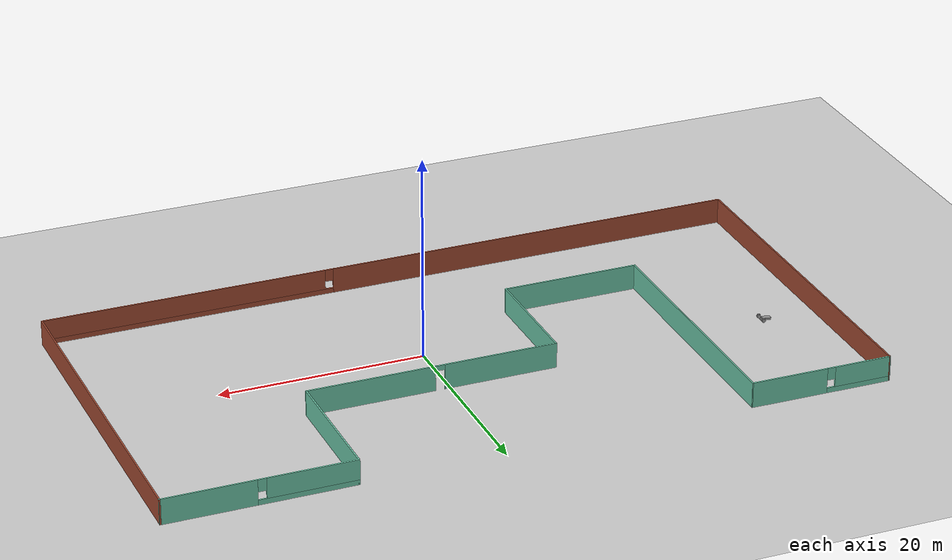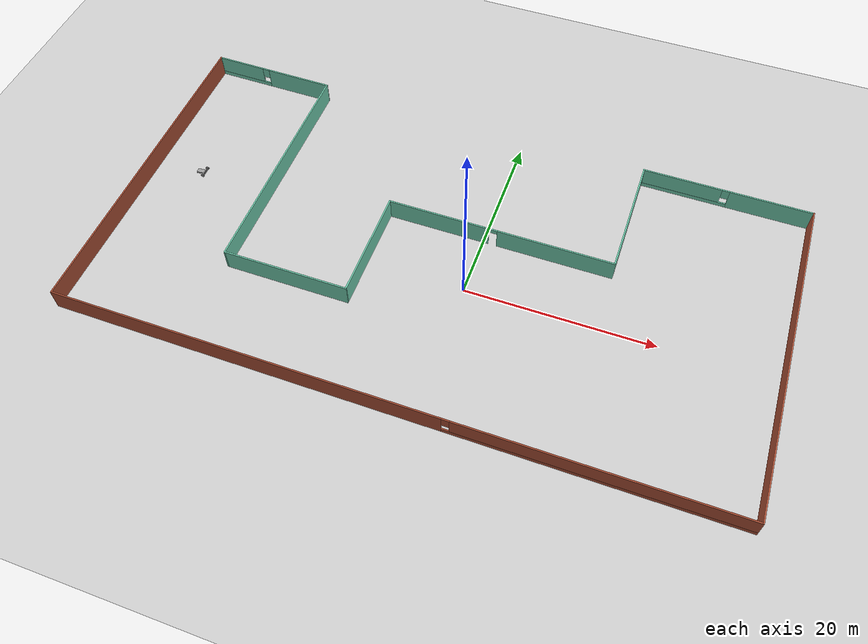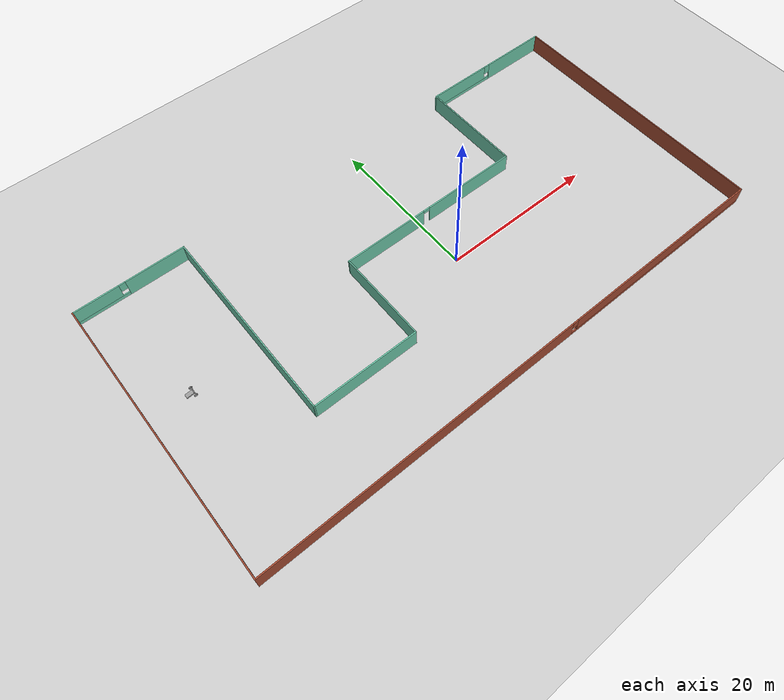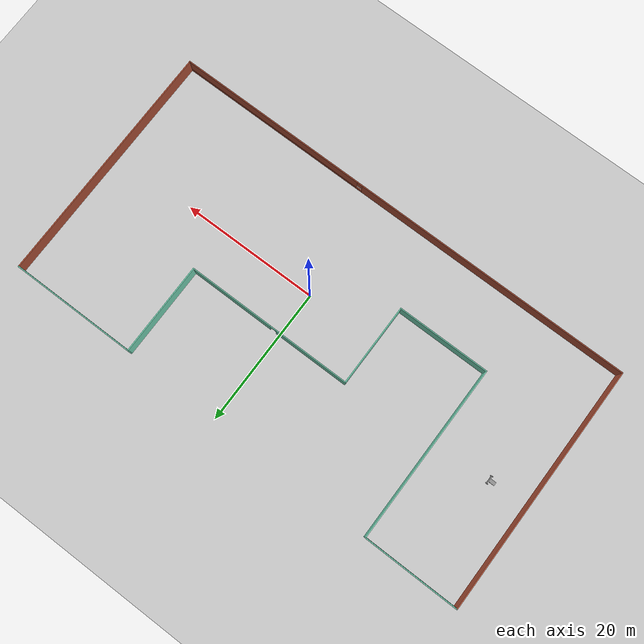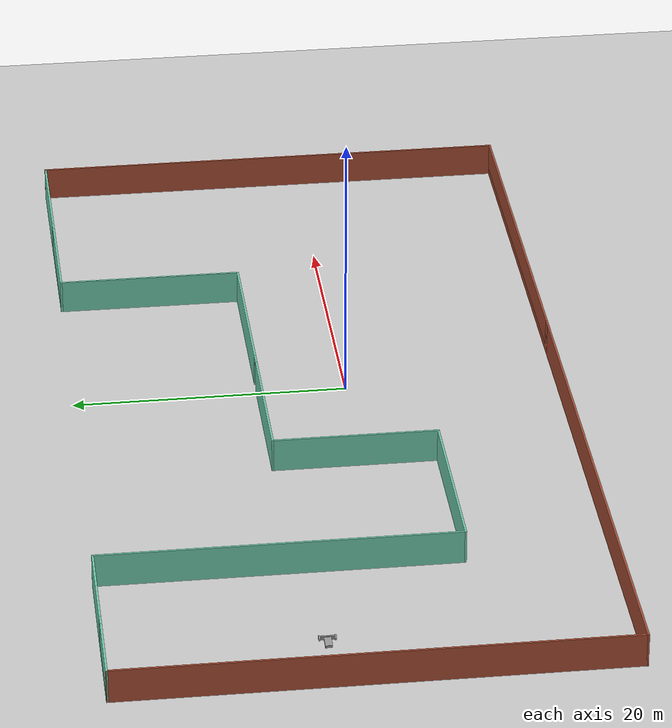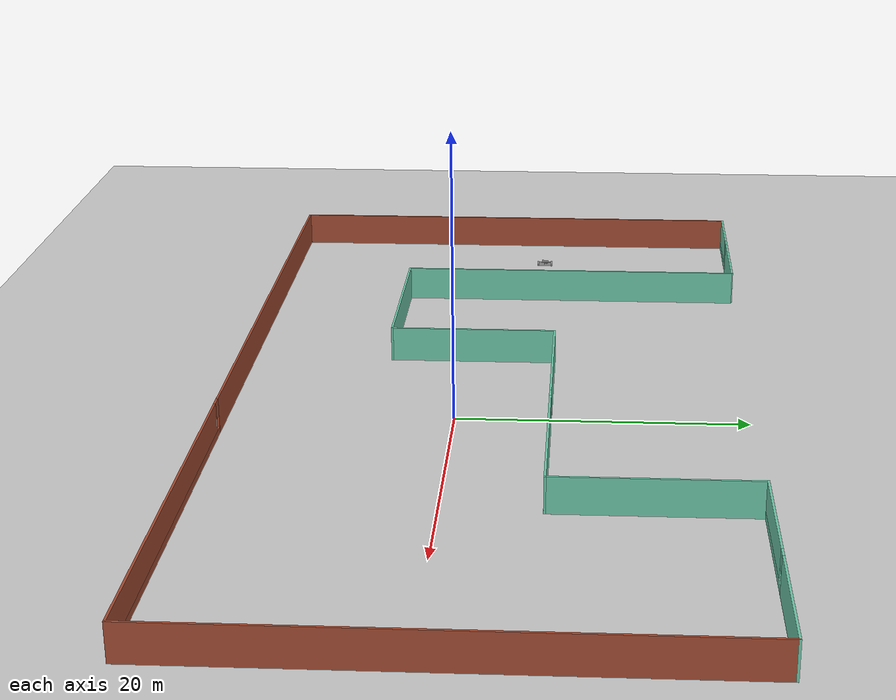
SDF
<sdf version="1.6">
 <world name="default">
  <model name="ground_plane">
   <static>1</static>
   <link name="link">
    <collision name="collision">
     <geometry><plane><normal>0 0 1</normal><size>100 100</size></plane></geometry>
     <surface>
      <contact><collide_bitmask>65535</collide_bitmask></contact>
      <friction><ode><mu>100</mu><mu2>50</mu2></ode></friction>
     </surface>
    </collision>
    <visual name="visual">
     <cast_shadows>0</cast_shadows>
     <geometry><plane><normal>0 0 1</normal><size>100 100</size></plane></geometry>
     <material>
      <script><uri>file://media/materials/scripts/gazebo.material</uri><name>Gazebo/Grey</name></script>
     </material>
    </visual>
   </link>
  </model>
  <model name="building_model">
   <pose>-2.8685 2.44532 0 0 -0 0</pose>
   <link name="Wall_0">
    <collision name="Wall_0_Collision">
     <geometry><box><size>36 0.15 2.5</size></box></geometry>
     <pose>0 0 1.25 0 -0 0</pose>
    </collision>
    <visual name="Wall_0_Visual">
     <pose>0 0 1.25 0 -0 0</pose>
     <geometry><box><size>36 0.15 2.5</size></box></geometry>
     <material>
      <script><uri>file://media/materials/scripts/gazebo.material</uri><name>Gazebo/Bricks</name></script>
      <ambient>0.435294 0.796078 0.67451 1</ambient>
     </material>
     <meta><layer>0</layer></meta>
    </visual>
    <pose>-34.7997 -0.00027 0 0 0 -1.5708</pose>
   </link>
   <link name="Wall_1">
    <pose>0.000272 -17.9253 0 0 -0 0</pose>
    <visual name="Wall_1_Visual_0">
     <pose>-14.4324 0 1.25 0 -0 0</pose>
     <geometry><box><size>40.8853 0.15 2.5</size></box></geometry>
     <material>
      <script><uri>file://media/materials/scripts/gazebo.material</uri><name>Gazebo/Bricks</name></script>
      <ambient>0.435294 0.796078 0.67451 1</ambient>
     </material>
     <meta><layer>0</layer></meta>
    </visual>
    <collision name="Wall_1_Collision_0">
     <geometry><box><size>40.8853 0.15 2.5</size></box></geometry>
     <pose>-14.4324 0 1.25 0 -0 0</pose>
    </collision>
    <visual name="Wall_1_Visual_1">
     <pose>20.4426 0 0.25 0 -0 0</pose>
     <geometry><box><size>28.8647 0.15 0.5</size></box></geometry>
     <material>
      <script><uri>file://media/materials/scripts/gazebo.material</uri><name>Gazebo/Bricks</name></script>
      <ambient>0.435294 0.796078 0.67451 1</ambient>
     </material>
     <meta><layer>0</layer></meta>
    </visual>
    <collision name="Wall_1_Collision_1">
     <geometry><box><size>28.8647 0.15 0.5</size></box></geometry>
     <pose>20.4426 0 0.25 0 -0 0</pose>
    </collision>
    <visual name="Wall_1_Visual_2">
     <pose>20.8426 0 1.5 0 -0 0</pose>
     <geometry><box><size>28.0647 0.15 2</size></box></geometry>
     <material>
      <script><uri>file://media/materials/scripts/gazebo.material</uri><name>Gazebo/Bricks</name></script>
      <ambient>0.435294 0.796078 0.67451 1</ambient>
     </material>
     <meta><layer>0</layer></meta>
    </visual>
    <collision name="Wall_1_Collision_2">
     <geometry><box><size>28.0647 0.15 2</size></box></geometry>
     <pose>20.8426 0 1.5 0 -0 0</pose>
    </collision>
    <visual name="Wall_1_Visual_3">
     <pose>6.41026 0 1.9 0 -0 0</pose>
     <geometry><box><size>0.8 0.15 1.2</size></box></geometry>
     <material>
      <script><uri>file://media/materials/scripts/gazebo.material</uri><name>Gazebo/Bricks</name></script>
      <ambient>0.435294 0.796078 0.67451 1</ambient>
     </material>
     <meta><layer>0</layer></meta>
    </visual>
    <collision name="Wall_1_Collision_3">
     <geometry><box><size>0.8 0.15 1.2</size></box></geometry>
     <pose>6.41026 0 1.9 0 -0 0</pose>
    </collision>
   </link>
   <link name="Wall_2">
    <collision name="Wall_2_Collision">
     <geometry><box><size>35.5 0.15 2.5</size></box></geometry>
     <pose>0 0 1.25 0 -0 0</pose>
    </collision>
    <visual name="Wall_2_Visual">
     <pose>0 0 1.25 0 -0 0</pose>
     <geometry><box><size>35.5 0.15 2.5</size></box></geometry>
     <material>
      <script><uri>file://media/materials/scripts/gazebo.material</uri><name>Gazebo/Bricks</name></script>
      <ambient>0.435294 0.796078 0.67451 1</ambient>
     </material>
     <meta><layer>0</layer></meta>
    </visual>
    <pose>34.8003 -0.25027 0 0 -0 1.5708</pose>
   </link>
   <link name="Wall_3">
    <pose>25.7503 17.4247 0 0 -0 3.14159</pose>
    <visual name="Wall_3_Visual_0">
     <pose>-4.68361 0 1.25 0 -0 0</pose>
     <geometry><box><size>8.88279 0.15 2.5</size></box></geometry>
     <material>
      <script><uri>file://media/materials/scripts/gazebo.material</uri><name>Gazebo/Grey</name></script>
      <ambient>0.435294 0.796078 0.67451 1</ambient>
     </material>
     <meta><layer>0</layer></meta>
    </visual>
    <collision name="Wall_3_Collision_0">
     <geometry><box><size>8.88279 0.15 2.5</size></box></geometry>
     <pose>-4.68361 0 1.25 0 -0 0</pose>
    </collision>
    <visual name="Wall_3_Visual_1">
     <pose>4.44139 0 0.25 0 -0 0</pose>
     <geometry><box><size>9.36721 0.15 0.5</size></box></geometry>
     <material>
      <script><uri>file://media/materials/scripts/gazebo.material</uri><name>Gazebo/Grey</name></script>
      <ambient>0.435294 0.796078 0.67451 1</ambient>
     </material>
     <meta><layer>0</layer></meta>
    </visual>
    <collision name="Wall_3_Collision_1">
     <geometry><box><size>9.36721 0.15 0.5</size></box></geometry>
     <pose>4.44139 0 0.25 0 -0 0</pose>
    </collision>
    <visual name="Wall_3_Visual_2">
     <pose>4.84139 0 1.5 0 -0 0</pose>
     <geometry><box><size>8.56721 0.15 2</size></box></geometry>
     <material>
      <script><uri>file://media/materials/scripts/gazebo.material</uri><name>Gazebo/Grey</name></script>
      <ambient>0.435294 0.796078 0.67451 1</ambient>
     </material>
     <meta><layer>0</layer></meta>
    </visual>
    <collision name="Wall_3_Collision_2">
     <geometry><box><size>8.56721 0.15 2</size></box></geometry>
     <pose>4.84139 0 1.5 0 -0 0</pose>
    </collision>
    <visual name="Wall_3_Visual_3">
     <pose>0.157787 0 1.9 0 -0 0</pose>
     <geometry><box><size>0.8 0.15 1.2</size></box></geometry>
     <material>
      <script><uri>file://media/materials/scripts/gazebo.material</uri><name>Gazebo/Grey</name></script>
      <ambient>0.435294 0.796078 0.67451 1</ambient>
     </material>
     <meta><layer>0</layer></meta>
    </visual>
    <collision name="Wall_3_Collision_3">
     <geometry><box><size>0.8 0.15 1.2</size></box></geometry>
     <pose>0.157787 0 1.9 0 -0 0</pose>
    </collision>
   </link>
   <link name="Wall_4">
    <collision name="Wall_4_Collision">
     <geometry><box><size>13.5 0.15 2.5</size></box></geometry>
     <pose>0 0 1.25 0 -0 0</pose>
    </collision>
    <visual name="Wall_4_Visual">
     <pose>0 0 1.25 0 -0 0</pose>
     <geometry><box><size>13.5 0.15 2.5</size></box></geometry>
     <material>
      <script><uri>file://media/materials/scripts/gazebo.material</uri><name>Gazebo/Grey</name></script>
      <ambient>0.435294 0.796078 0.67451 1</ambient>
     </material>
     <meta><layer>0</layer></meta>
    </visual>
    <pose>16.7003 10.7497 0 0 0 -1.5708</pose>
   </link>
   <link name="Wall_5">
    <pose>4.52527 4.07473 0 0 -0 3.14159</pose>
    <visual name="Wall_5_Visual_0">
     <pose>-5.99321 0 1.25 0 -0 0</pose>
     <geometry><box><size>12.5136 0.15 2.5</size></box></geometry>
     <material>
      <script><uri>file://media/materials/scripts/gazebo.material</uri><name>Gazebo/Grey</name></script>
      <ambient>0.435294 0.796078 0.67451 1</ambient>
     </material>
     <meta><layer>0</layer></meta>
    </visual>
    <collision name="Wall_5_Collision_0">
     <geometry><box><size>12.5136 0.15 2.5</size></box></geometry>
     <pose>-5.99321 0 1.25 0 -0 0</pose>
    </collision>
    <visual name="Wall_5_Visual_1">
     <pose>6.70679 0 1.25 0 -0 0</pose>
     <geometry><box><size>11.0864 0.15 2.5</size></box></geometry>
     <material>
      <script><uri>file://media/materials/scripts/gazebo.material</uri><name>Gazebo/Grey</name></script>
      <ambient>0.435294 0.796078 0.67451 1</ambient>
     </material>
     <meta><layer>0</layer></meta>
    </visual>
    <collision name="Wall_5_Collision_1">
     <geometry><box><size>11.0864 0.15 2.5</size></box></geometry>
     <pose>6.70679 0 1.25 0 -0 0</pose>
    </collision>
    <visual name="Wall_5_Visual_2">
     <pose>0.713585 0 2.25 0 -0 0</pose>
     <geometry><box><size>0.9 0.15 0.5</size></box></geometry>
     <material>
      <script><uri>file://media/materials/scripts/gazebo.material</uri><name>Gazebo/Grey</name></script>
      <ambient>0.435294 0.796078 0.67451 1</ambient>
     </material>
     <meta><layer>0</layer></meta>
    </visual>
    <collision name="Wall_5_Collision_2">
     <geometry><box><size>0.9 0.15 0.5</size></box></geometry>
     <pose>0.713585 0 2.25 0 -0 0</pose>
    </collision>
   </link>
   <link name="Wall_6">
    <collision name="Wall_6_Collision">
     <geometry><box><size>12 0.15 2.5</size></box></geometry>
     <pose>0 0 1.25 0 -0 0</pose>
    </collision>
    <visual name="Wall_6_Visual">
     <pose>0 0 1.25 0 -0 0</pose>
     <geometry><box><size>12 0.15 2.5</size></box></geometry>
     <material>
      <script><uri>file://media/materials/scripts/gazebo.material</uri><name>Gazebo/Grey</name></script>
      <ambient>0.435294 0.796078 0.67451 1</ambient>
     </material>
     <meta><layer>0</layer></meta>
    </visual>
    <pose>-7.64973 -1.85027 0 0 0 -1.5708</pose>
   </link>
   <link name="Wall_7">
    <collision name="Wall_7_Collision">
     <geometry><box><size>13.5 0.15 2.5</size></box></geometry>
     <pose>0 0 1.25 0 -0 0</pose>
    </collision>
    <visual name="Wall_7_Visual">
     <pose>0 0 1.25 0 -0 0</pose>
     <geometry><box><size>13.5 0.15 2.5</size></box></geometry>
     <material>
      <script><uri>file://media/materials/scripts/gazebo.material</uri><name>Gazebo/Grey</name></script>
      <ambient>0.435294 0.796078 0.67451 1</ambient>
     </material>
     <meta><layer>0</layer></meta>
    </visual>
    <pose>-14.3247 -7.77527 0 0 -0 3.14159</pose>
   </link>
   <link name="Wall_8">
    <collision name="Wall_8_Collision">
     <geometry><box><size>25.75 0.15 2.5</size></box></geometry>
     <pose>0 0 1.25 0 -0 0</pose>
    </collision>
    <visual name="Wall_8_Visual">
     <pose>0 0 1.25 0 -0 0</pose>
     <geometry><box><size>25.75 0.15 2.5</size></box></geometry>
     <material>
      <script><uri>file://media/materials/scripts/gazebo.material</uri><name>Gazebo/Grey</name></script>
      <ambient>0.435294 0.796078 0.67451 1</ambient>
     </material>
     <meta><layer>0</layer></meta>
    </visual>
    <pose>-20.9997 5.02473 0 0 -0 1.5708</pose>
   </link>
   <link name="Wall_9">
    <pose>-27.8997 17.8747 0 0 -0 3.13435</pose>
    <visual name="Wall_9_Visual_0">
     <pose>-3.20663 0 1.25 0 -0 0</pose>
     <geometry><box><size>7.53709 0.15 2.5</size></box></geometry>
     <material>
      <script><uri>file://media/materials/scripts/gazebo.material</uri><name>Gazebo/Grey</name></script>
      <ambient>0.435294 0.796078 0.67451 1</ambient>
     </material>
     <meta><layer>0</layer></meta>
    </visual>
    <collision name="Wall_9_Collision_0">
     <geometry><box><size>7.53709 0.15 2.5</size></box></geometry>
     <pose>-3.20663 0 1.25 0 -0 0</pose>
    </collision>
    <visual name="Wall_9_Visual_1">
     <pose>3.76855 0 0.25 0 -0 0</pose>
     <geometry><box><size>6.41327 0.15 0.5</size></box></geometry>
     <material>
      <script><uri>file://media/materials/scripts/gazebo.material</uri><name>Gazebo/Grey</name></script>
      <ambient>0.435294 0.796078 0.67451 1</ambient>
     </material>
     <meta><layer>0</layer></meta>
    </visual>
    <collision name="Wall_9_Collision_1">
     <geometry><box><size>6.41327 0.15 0.5</size></box></geometry>
     <pose>3.76855 0 0.25 0 -0 0</pose>
    </collision>
    <visual name="Wall_9_Visual_2">
     <pose>4.16855 0 1.5 0 -0 0</pose>
     <geometry><box><size>5.61327 0.15 2</size></box></geometry>
     <material>
      <script><uri>file://media/materials/scripts/gazebo.material</uri><name>Gazebo/Grey</name></script>
      <ambient>0.435294 0.796078 0.67451 1</ambient>
     </material>
     <meta><layer>0</layer></meta>
    </visual>
    <collision name="Wall_9_Collision_2">
     <geometry><box><size>5.61327 0.15 2</size></box></geometry>
     <pose>4.16855 0 1.5 0 -0 0</pose>
    </collision>
    <visual name="Wall_9_Visual_3">
     <pose>0.961913 0 1.9 0 -0 0</pose>
     <geometry><box><size>0.8 0.15 1.2</size></box></geometry>
     <material>
      <script><uri>file://media/materials/scripts/gazebo.material</uri><name>Gazebo/Grey</name></script>
      <ambient>0.435294 0.796078 0.67451 1</ambient>
     </material>
     <meta><layer>0</layer></meta>
    </visual>
    <collision name="Wall_9_Collision_3">
     <geometry><box><size>0.8 0.15 1.2</size></box></geometry>
     <pose>0.961913 0 1.9 0 -0 0</pose>
    </collision>
   </link>
   <static>1</static>
  </model>
  <model name="robot_new_clone">
   <link name="link_0">
    <pose>0 -0 -0.017451 0 -0 0</pose>
    <inertial>
     <mass>1</mass>
     <inertia>
      <ixx>0.166667</ixx>
      <ixy>0</ixy>
      <ixz>0</ixz>
      <iyy>0.166667</iyy>
      <iyz>0</iyz>
      <izz>0.166667</izz>
     </inertia>
    </inertial>
    <visual name="visual">
     <geometry><box><size>0.3 1 0.1</size></box></geometry>
     <material>
      <lighting>1</lighting>
      <script><uri>file://media/materials/scripts/gazebo.material</uri><name>Gazebo/Grey</name></script>
      <shader type="pixel"><normal_map>__default__</normal_map></shader>
      <ambient>0.3 0.3 0.3 1</ambient>
      <diffuse>0.7 0.7 0.7 1</diffuse>
      <specular>0.01 0.01 0.01 1</specular>
      <emissive>0 0 0 1</emissive>
     </material>
    </visual>
    <collision name="collision">
     <geometry><box><size>0.3 1 0.1</size></box></geometry>
     <surface>
      <friction>
       <ode><mu>1</mu><mu2>1</mu2><fdir1>0 0 0</fdir1><slip1>0</slip1><slip2>0</slip2></ode>
       <torsional>
        <coefficient>1</coefficient>
        <patch_radius>0</patch_radius>
        <surface_radius>0</surface_radius>
        <use_patch_radius>1</use_patch_radius>
        <ode><slip>0</slip></ode>
       </torsional>
      </friction>
      <bounce><restitution_coefficient>0</restitution_coefficient><threshold>1e+06</threshold></bounce>
      <contact>
       <collide_without_contact>0</collide_without_contact>
       <collide_without_contact_bitmask>1</collide_without_contact_bitmask>
       <collide_bitmask>1</collide_bitmask>
       <ode>
        <soft_cfm>0</soft_cfm>
        <soft_erp>0.2</soft_erp>
        <kp>1e+13</kp>
        <kd>1</kd>
        <max_vel>0.01</max_vel>
        <min_depth>0</min_depth>
       </ode>
       <bullet>
        <split_impulse>1</split_impulse>
        <split_impulse_penetration_threshold>-0.01</split_impulse_penetration_threshold>
        <soft_cfm>0</soft_cfm>
        <soft_erp>0.2</soft_erp>
        <kp>1e+13</kp>
        <kd>1</kd>
       </bullet>
      </contact>
     </surface>
    </collision>
   </link>
   <link name="link_0_0">
    <pose>-0.02 0 0.432549 -1e-06 0 0</pose>
    <inertial>
     <mass>1</mass>
     <inertia>
      <ixx>0.166667</ixx>
      <ixy>0</ixy>
      <ixz>0</ixz>
      <iyy>0.166667</iyy>
      <iyz>0</iyz>
      <izz>0.166667</izz>
     </inertia>
    </inertial>
    <visual name="visual">
     <geometry><box><size>0.2 0.5 1</size></box></geometry>
     <material>
      <lighting>1</lighting>
      <script><uri>file://media/materials/scripts/gazebo.material</uri><name>Gazebo/Grey</name></script>
      <shader type="pixel"><normal_map>__default__</normal_map></shader>
      <ambient>0.3 0.3 0.3 1</ambient>
      <diffuse>0.7 0.7 0.7 1</diffuse>
      <specular>0.01 0.01 0.01 1</specular>
      <emissive>0 0 0 1</emissive>
     </material>
    </visual>
    <collision name="collision">
     <geometry><box><size>0.2 0.5 1</size></box></geometry>
     <surface>
      <friction>
       <ode><mu>1</mu><mu2>1</mu2><fdir1>0 0 0</fdir1><slip1>0</slip1><slip2>0</slip2></ode>
       <torsional>
        <coefficient>1</coefficient>
        <patch_radius>0</patch_radius>
        <surface_radius>0</surface_radius>
        <use_patch_radius>1</use_patch_radius>
        <ode><slip>0</slip></ode>
       </torsional>
      </friction>
      <bounce><restitution_coefficient>0</restitution_coefficient><threshold>1e+06</threshold></bounce>
      <contact>
       <collide_without_contact>0</collide_without_contact>
       <collide_without_contact_bitmask>1</collide_without_contact_bitmask>
       <collide_bitmask>1</collide_bitmask>
       <ode>
        <soft_cfm>0</soft_cfm>
        <soft_erp>0.2</soft_erp>
        <kp>1e+13</kp>
        <kd>1</kd>
        <max_vel>0.01</max_vel>
        <min_depth>0</min_depth>
       </ode>
       <bullet>
        <split_impulse>1</split_impulse>
        <split_impulse_penetration_threshold>-0.01</split_impulse_penetration_threshold>
        <soft_cfm>0</soft_cfm>
        <soft_erp>0.2</soft_erp>
        <kp>1e+13</kp>
        <kd>1</kd>
       </bullet>
      </contact>
     </surface>
    </collision>
   </link>
   <link name="link_1">
    <pose>0 -0.550019 0.008726 1.5707 -0 0</pose>
    <inertial>
     <mass>1</mass>
     <inertia><ixx>0.145833</ixx><ixy>0</ixy><ixz>0</ixz><iyy>0.145833</iyy><iyz>0</iyz><izz>0.125</izz></inertia>
    </inertial>
    <visual name="visual">
     <geometry><cylinder><radius>0.2</radius><length>0.1</length></cylinder></geometry>
     <material>
      <lighting>1</lighting>
      <script><uri>file://media/materials/scripts/gazebo.material</uri><name>Gazebo/Grey</name></script>
      <shader type="pixel"><normal_map>__default__</normal_map></shader>
      <ambient>0.3 0.3 0.3 1</ambient>
      <diffuse>0.7 0.7 0.7 1</diffuse>
      <specular>0.01 0.01 0.01 1</specular>
      <emissive>0 0 0 1</emissive>
     </material>
    </visual>
    <collision name="collision">
     <geometry><cylinder><radius>0.2</radius><length>0.1</length></cylinder></geometry>
     <surface>
      <friction>
       <ode><mu>1</mu><mu2>1</mu2><fdir1>0 0 0</fdir1><slip1>0</slip1><slip2>0</slip2></ode>
       <torsional>
        <coefficient>1</coefficient>
        <patch_radius>0</patch_radius>
        <surface_radius>0</surface_radius>
        <use_patch_radius>1</use_patch_radius>
        <ode><slip>0</slip></ode>
       </torsional>
      </friction>
      <bounce><restitution_coefficient>0</restitution_coefficient><threshold>1e+06</threshold></bounce>
      <contact>
       <collide_without_contact>0</collide_without_contact>
       <collide_without_contact_bitmask>1</collide_without_contact_bitmask>
       <collide_bitmask>1</collide_bitmask>
       <ode>
        <soft_cfm>0</soft_cfm>
        <soft_erp>0.2</soft_erp>
        <kp>1e+13</kp>
        <kd>1</kd>
        <max_vel>0.01</max_vel>
        <min_depth>0</min_depth>
       </ode>
       <bullet>
        <split_impulse>1</split_impulse>
        <split_impulse_penetration_threshold>-0.01</split_impulse_penetration_threshold>
        <soft_cfm>0</soft_cfm>
        <soft_erp>0.2</soft_erp>
        <kp>1e+13</kp>
        <kd>1</kd>
       </bullet>
      </contact>
     </surface>
    </collision>
   </link>
   <link name="link_1_clone">
    <pose>0 0.550019 0.008725 1.5707 -0 0</pose>
    <inertial>
     <mass>1</mass>
     <inertia><ixx>0.145833</ixx><ixy>0</ixy><ixz>0</ixz><iyy>0.145833</iyy><iyz>0</iyz><izz>0.125</izz></inertia>
    </inertial>
    <visual name="visual">
     <geometry><cylinder><radius>0.2</radius><length>0.1</length></cylinder></geometry>
     <material>
      <lighting>1</lighting>
      <script><uri>file://media/materials/scripts/gazebo.material</uri><name>Gazebo/Grey</name></script>
      <shader type="pixel"><normal_map>__default__</normal_map></shader>
      <ambient>0.3 0.3 0.3 1</ambient>
      <diffuse>0.7 0.7 0.7 1</diffuse>
      <specular>0.01 0.01 0.01 1</specular>
      <emissive>0 0 0 1</emissive>
     </material>
    </visual>
    <collision name="collision">
     <geometry><cylinder><radius>0.2</radius><length>0.1</length></cylinder></geometry>
     <surface>
      <friction>
       <ode><mu>1</mu><mu2>1</mu2><fdir1>0 0 0</fdir1><slip1>0</slip1><slip2>0</slip2></ode>
       <torsional>
        <coefficient>1</coefficient>
        <patch_radius>0</patch_radius>
        <surface_radius>0</surface_radius>
        <use_patch_radius>1</use_patch_radius>
        <ode><slip>0</slip></ode>
       </torsional>
      </friction>
      <bounce><restitution_coefficient>0</restitution_coefficient><threshold>1e+06</threshold></bounce>
      <contact>
       <collide_without_contact>0</collide_without_contact>
       <collide_without_contact_bitmask>1</collide_without_contact_bitmask>
       <collide_bitmask>1</collide_bitmask>
       <ode>
        <soft_cfm>0</soft_cfm>
        <soft_erp>0.2</soft_erp>
        <kp>1e+13</kp>
        <kd>1</kd>
        <max_vel>0.01</max_vel>
        <min_depth>0</min_depth>
       </ode>
       <bullet>
        <split_impulse>1</split_impulse>
        <split_impulse_penetration_threshold>-0.01</split_impulse_penetration_threshold>
        <soft_cfm>0</soft_cfm>
        <soft_erp>0.2</soft_erp>
        <kp>1e+13</kp>
        <kd>1</kd>
       </bullet>
      </contact>
     </surface>
    </collision>
   </link>
   <joint name="link_0_JOINT_0_0" type="fixed">
    <parent>link_0</parent>
    <child>link_0_0</child>
    <physics>
     <ode><limit><cfm>0</cfm><erp>0.2</erp></limit><suspension><cfm>0</cfm><erp>0.2</erp></suspension></ode>
    </physics>
   </joint>
   <joint name="link_0_JOINT_0" type="revolute">
    <parent>link_0</parent>
    <child>link_1</child>
    <axis>
     <xyz>0 0 1</xyz>
     <use_parent_model_frame>0</use_parent_model_frame>
     <limit>
      <lower>-1.79769e+308</lower>
      <upper>1.79769e+308</upper>
      <effort>-1</effort>
      <velocity>-1</velocity>
     </limit>
     <dynamics>
      <spring_reference>0</spring_reference>
      <spring_stiffness>0</spring_stiffness>
      <damping>0</damping>
      <friction>0</friction>
     </dynamics>
    </axis>
    <physics>
     <ode><limit><cfm>0</cfm><erp>0.2</erp></limit><suspension><cfm>0</cfm><erp>0.2</erp></suspension></ode>
    </physics>
   </joint>
   <joint name="link_0_JOINT_1" type="revolute">
    <parent>link_0</parent>
    <child>link_1_clone</child>
    <axis>
     <xyz>0 0 1</xyz>
     <use_parent_model_frame>0</use_parent_model_frame>
     <limit>
      <lower>-1.79769e+308</lower>
      <upper>1.79769e+308</upper>
      <effort>-1</effort>
      <velocity>-1</velocity>
     </limit>
     <dynamics>
      <spring_reference>0</spring_reference>
      <spring_stiffness>0</spring_stiffness>
      <damping>0</damping>
      <friction>0</friction>
     </dynamics>
    </axis>
    <physics>
     <ode><limit><cfm>0</cfm><erp>0.2</erp></limit><suspension><cfm>0</cfm><erp>0.2</erp></suspension></ode>
    </physics>
   </joint>
   <static>0</static>
   <pose>-32.2244 5.21219 0.200754 3.14152 -1.48359 -3.1385</pose>
  </model>
 </world>
</sdf>
